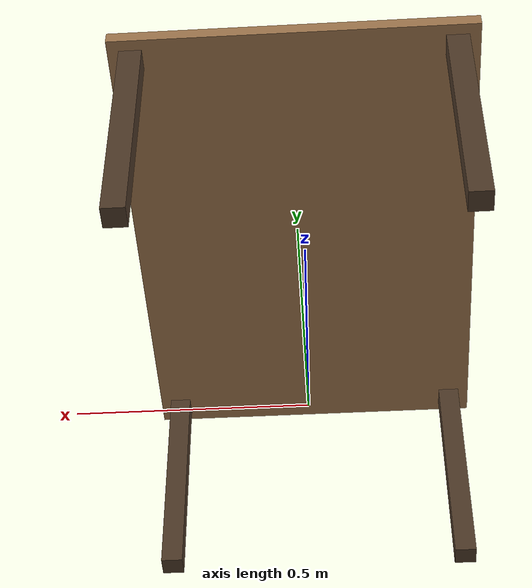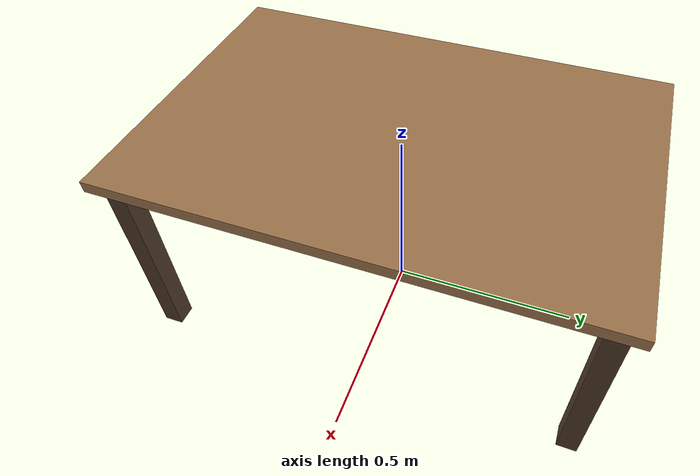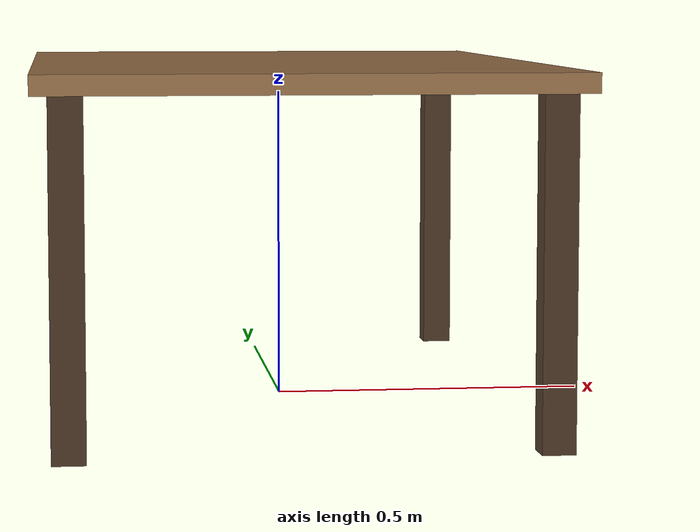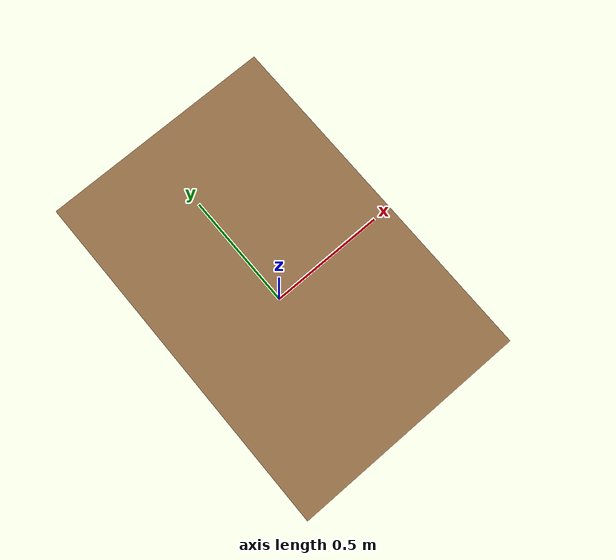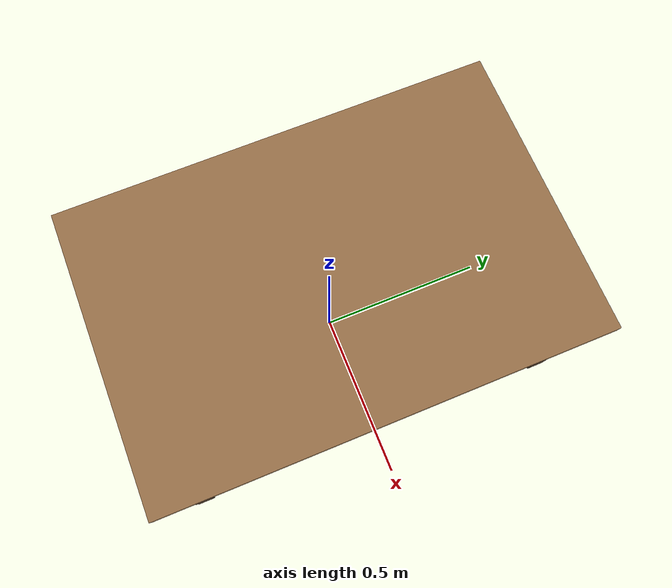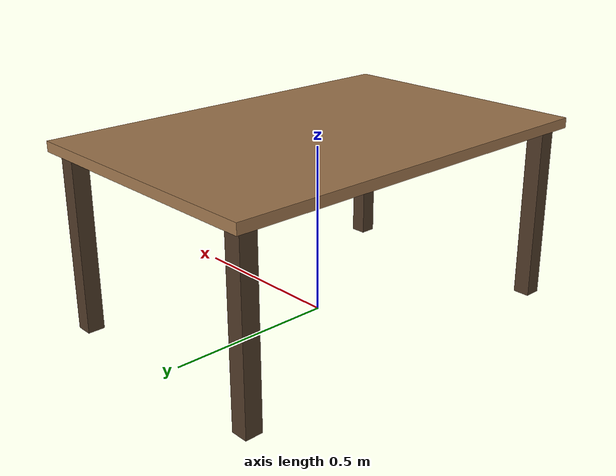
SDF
<?xml version="1.0"?>
<sdf version="1.9">
  <model name="pnp_side_table">
    <static>true</static>
    <link name="link">
      <collision name="top_collision">
        <pose>0 0 0.535 0 0 0</pose>
        <geometry><box><size>0.8 1.2 0.03</size></box></geometry>
        <surface>
          <friction><ode><mu>1.0</mu><mu2>1.0</mu2></ode></friction>
        </surface>
      </collision>
      <visual name="top_visual">
        <pose>0 0 0.535 0 0 0</pose>
        <geometry><box><size>0.8 1.2 0.03</size></box></geometry>
        <material>
          <ambient>0.55 0.40 0.26 1</ambient>
          <diffuse>0.62 0.46 0.30 1</diffuse>
          <specular>0.1 0.1 0.1 1</specular>
        </material>
      </visual>
      <visual name="leg_fl">
        <pose>0.35 0.55 0.26 0 0 0</pose>
        <geometry><box><size>0.05 0.05 0.52</size></box></geometry>
        <material><diffuse>0.3 0.22 0.15 1</diffuse><ambient>0.3 0.22 0.15 1</ambient></material>
      </visual>
      <visual name="leg_fr">
        <pose>0.35 -0.55 0.26 0 0 0</pose>
        <geometry><box><size>0.05 0.05 0.52</size></box></geometry>
        <material><diffuse>0.3 0.22 0.15 1</diffuse><ambient>0.3 0.22 0.15 1</ambient></material>
      </visual>
      <visual name="leg_bl">
        <pose>-0.35 0.55 0.26 0 0 0</pose>
        <geometry><box><size>0.05 0.05 0.52</size></box></geometry>
        <material><diffuse>0.3 0.22 0.15 1</diffuse><ambient>0.3 0.22 0.15 1</ambient></material>
      </visual>
      <visual name="leg_br">
        <pose>-0.35 -0.55 0.26 0 0 0</pose>
        <geometry><box><size>0.05 0.05 0.52</size></box></geometry>
        <material><diffuse>0.3 0.22 0.15 1</diffuse><ambient>0.3 0.22 0.15 1</ambient></material>
      </visual>
    </link>
  </model>
</sdf>
